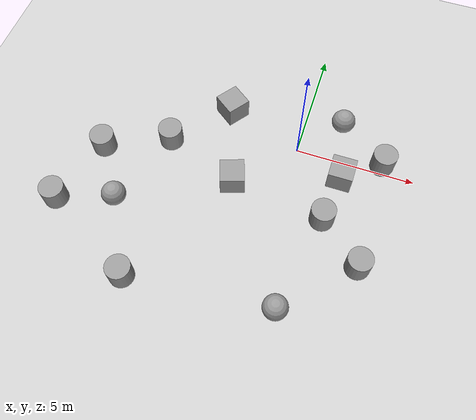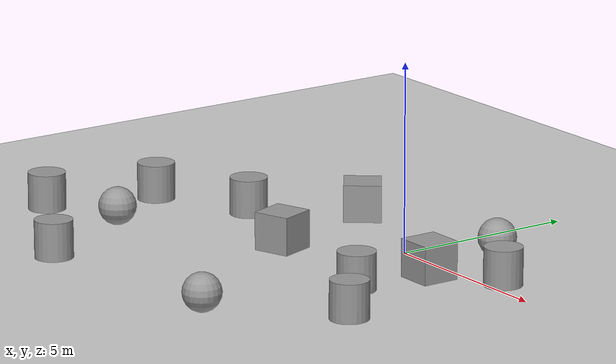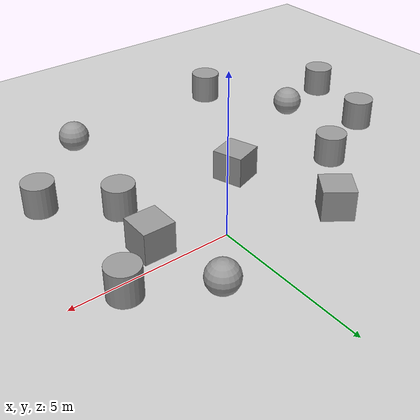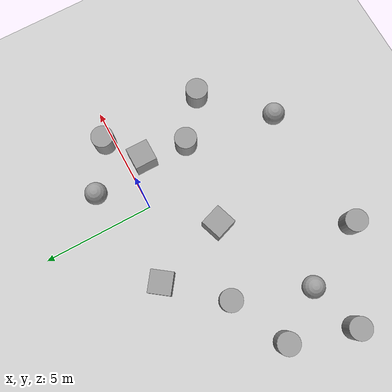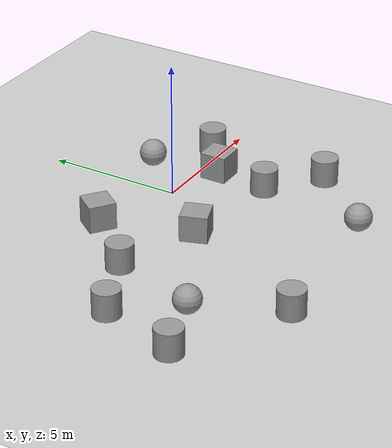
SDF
<sdf version="1.7">
 <world name="default">
  <model name="ground_plane">
   <static>1</static>
   <link name="link">
    <collision name="collision">
     <geometry><plane><normal>0 0 1</normal><size>100 100</size></plane></geometry>
     <surface>
      <contact><collide_bitmask>65535</collide_bitmask></contact>
      <friction><ode><mu>100</mu><mu2>50</mu2></ode></friction>
     </surface>
    </collision>
    <visual name="visual">
     <cast_shadows>0</cast_shadows>
     <geometry><plane><normal>0 0 1</normal><size>100 100</size></plane></geometry>
     <material>
      <script><uri>file://media/materials/scripts/gazebo.material</uri><name>Gazebo/Grey</name></script>
     </material>
    </visual>
   </link>
  </model>
  <light name="sun" type="directional">
   <pose>0 0 10 0 -0 0</pose>
   <diffuse>0.8 0.8 0.8 1</diffuse>
   <specular>0.2 0.2 0.2 1</specular>
   <attenuation>
    <range>1000</range>
    <constant>0.9</constant>
    <linear>0.01</linear>
    <quadratic>0.001</quadratic>
   </attenuation>
   <direction>-0.5 0.1 -0.9</direction>
   <spot><inner_angle>0</inner_angle><outer_angle>0</outer_angle><falloff>0</falloff></spot>
  </light>
  <gravity>0 0 -9.8</gravity>
  <magnetic_field>6e-06 2.3e-05 -4.2e-05</magnetic_field>
  <atmosphere type="adiabatic"/>
  <physics type="ode">
   <max_step_size>0.001</max_step_size>
   <real_time_factor>1</real_time_factor>
   <real_time_update_rate>1000</real_time_update_rate>
  </physics>
  <scene><ambient>0.4 0.4 0.4 1</ambient><background>0.7 0.7 0.7 1</background><shadows>1</shadows></scene>
  <spherical_coordinates>
   <surface_model>EARTH_WGS84</surface_model>
   <latitude_deg>0</latitude_deg>
   <longitude_deg>0</longitude_deg>
   <elevation>0</elevation>
   <heading_deg>0</heading_deg>
  </spherical_coordinates>
  <model name="unit_cylinder">
   <pose>3.58639 0.388225 0.499997 4e-06 3e-06 -0</pose>
   <link name="link">
    <inertial>
     <mass>1</mass>
     <inertia><ixx>0.145833</ixx><ixy>0</ixy><ixz>0</ixz><iyy>0.145833</iyy><iyz>0</iyz><izz>0.125</izz></inertia>
    </inertial>
    <collision name="collision">
     <geometry><cylinder><radius>0.5</radius><length>1</length></cylinder></geometry>
    </collision>
    <visual name="visual">
     <geometry><cylinder><radius>0.5</radius><length>1</length></cylinder></geometry>
     <material>
      <script><name>Gazebo/Grey</name><uri>file://media/materials/scripts/gazebo.material</uri></script>
     </material>
    </visual>
   </link>
  </model>
  <model name="unit_cylinder_0">
   <pose>1.79233 -2.80161 0.499997 4e-06 3e-06 -0</pose>
   <link name="link">
    <inertial>
     <mass>1</mass>
     <inertia><ixx>0.145833</ixx><ixy>0</ixy><ixz>0</ixz><iyy>0.145833</iyy><iyz>0</iyz><izz>0.125</izz></inertia>
    </inertial>
    <collision name="collision">
     <geometry><cylinder><radius>0.5</radius><length>1</length></cylinder></geometry>
    </collision>
    <visual name="visual">
     <geometry><cylinder><radius>0.5</radius><length>1</length></cylinder></geometry>
     <material>
      <script><name>Gazebo/Grey</name><uri>file://media/materials/scripts/gazebo.material</uri></script>
     </material>
    </visual>
   </link>
  </model>
  <model name="unit_sphere">
   <pose>1.55841 1.7766 0.5 0 -0 0</pose>
   <link name="link">
    <inertial>
     <mass>1</mass>
     <inertia><ixx>0.1</ixx><ixy>0</ixy><ixz>0</ixz><iyy>0.1</iyy><iyz>0</iyz><izz>0.1</izz></inertia>
    </inertial>
    <collision name="collision"><geometry><sphere><radius>0.5</radius></sphere></geometry></collision>
    <visual name="visual">
     <geometry><sphere><radius>0.5</radius></sphere></geometry>
     <material>
      <script><name>Gazebo/Grey</name><uri>file://media/materials/scripts/gazebo.material</uri></script>
     </material>
    </visual>
   </link>
  </model>
  <model name="unit_box">
   <pose>2.05937 -0.758404 0.499995 -1e-05 -0 -0</pose>
   <link name="link">
    <inertial>
     <mass>1</mass>
     <inertia>
      <ixx>0.166667</ixx>
      <ixy>0</ixy>
      <ixz>0</ixz>
      <iyy>0.166667</iyy>
      <iyz>0</iyz>
      <izz>0.166667</izz>
     </inertia>
    </inertial>
    <collision name="collision"><geometry><box><size>1 1 1</size></box></geometry></collision>
    <visual name="visual">
     <geometry><box><size>1 1 1</size></box></geometry>
     <material>
      <script><name>Gazebo/Grey</name><uri>file://media/materials/scripts/gazebo.material</uri></script>
     </material>
    </visual>
   </link>
  </model>
  <model name="unit_box_0">
   <pose>-3.23122 1.05114 0.5 -0 -0 -0.634264</pose>
   <link name="link">
    <inertial>
     <mass>1</mass>
     <inertia>
      <ixx>0.166667</ixx>
      <ixy>0</ixy>
      <ixz>0</ixz>
      <iyy>0.166667</iyy>
      <iyz>0</iyz>
      <izz>0.166667</izz>
     </inertia>
    </inertial>
    <collision name="collision"><geometry><box><size>1 1 1</size></box></geometry></collision>
    <visual name="visual">
     <geometry><box><size>1 1 1</size></box></geometry>
     <material>
      <script><name>Gazebo/Grey</name><uri>file://media/materials/scripts/gazebo.material</uri></script>
     </material>
    </visual>
   </link>
  </model>
  <model name="unit_box_1">
   <pose>-2.14563 -2.27628 0.499999 3e-06 -5e-06 1.89882</pose>
   <link name="link">
    <inertial>
     <mass>1</mass>
     <inertia>
      <ixx>0.166667</ixx>
      <ixy>0</ixy>
      <ixz>0</ixz>
      <iyy>0.166667</iyy>
      <iyz>0</iyz>
      <izz>0.166667</izz>
     </inertia>
    </inertial>
    <collision name="collision"><geometry><box><size>1 1 1</size></box></geometry></collision>
    <visual name="visual">
     <geometry><box><size>1 1 1</size></box></geometry>
     <material>
      <script><name>Gazebo/Grey</name><uri>file://media/materials/scripts/gazebo.material</uri></script>
     </material>
    </visual>
   </link>
  </model>
  <model name="unit_sphere_0">
   <pose>-6.42769 -4.49776 0.5 0 -0 0</pose>
   <link name="link">
    <inertial>
     <mass>1</mass>
     <inertia><ixx>0.1</ixx><ixy>0</ixy><ixz>0</ixz><iyy>0.1</iyy><iyz>0</iyz><izz>0.1</izz></inertia>
    </inertial>
    <collision name="collision"><geometry><sphere><radius>0.5</radius></sphere></geometry></collision>
    <visual name="visual">
     <geometry><sphere><radius>0.5</radius></sphere></geometry>
     <material>
      <script><name>Gazebo/Grey</name><uri>file://media/materials/scripts/gazebo.material</uri></script>
     </material>
    </visual>
   </link>
  </model>
  <model name="unit_sphere_1">
   <pose>1.07161 -6.92058 0.5 0 -0 0</pose>
   <link name="link">
    <inertial>
     <mass>1</mass>
     <inertia><ixx>0.1</ixx><ixy>0</ixy><ixz>0</ixz><iyy>0.1</iyy><iyz>0</iyz><izz>0.1</izz></inertia>
    </inertial>
    <collision name="collision"><geometry><sphere><radius>0.5</radius></sphere></geometry></collision>
    <visual name="visual">
     <geometry><sphere><radius>0.5</radius></sphere></geometry>
     <material>
      <script><name>Gazebo/Grey</name><uri>file://media/materials/scripts/gazebo.material</uri></script>
     </material>
    </visual>
   </link>
  </model>
  <model name="unit_cylinder_1">
   <pose>3.59307 -4.32848 0.499992 -3e-06 -4e-06 -0</pose>
   <link name="link">
    <inertial>
     <mass>1</mass>
     <inertia><ixx>0.145833</ixx><ixy>0</ixy><ixz>0</ixz><iyy>0.145833</iyy><iyz>0</iyz><izz>0.125</izz></inertia>
    </inertial>
    <collision name="collision">
     <geometry><cylinder><radius>0.5</radius><length>1</length></cylinder></geometry>
    </collision>
    <visual name="visual">
     <geometry><cylinder><radius>0.5</radius><length>1</length></cylinder></geometry>
     <material>
      <script><name>Gazebo/Grey</name><uri>file://media/materials/scripts/gazebo.material</uri></script>
     </material>
    </visual>
   </link>
  </model>
  <model name="unit_cylinder_2">
   <pose>-5.26081 -1.15931 0.499998 3e-06 4e-06 -0</pose>
   <link name="link">
    <inertial>
     <mass>1</mass>
     <inertia><ixx>0.145833</ixx><ixy>0</ixy><ixz>0</ixz><iyy>0.145833</iyy><iyz>0</iyz><izz>0.125</izz></inertia>
    </inertial>
    <collision name="collision">
     <geometry><cylinder><radius>0.5</radius><length>1</length></cylinder></geometry>
    </collision>
    <visual name="visual">
     <geometry><cylinder><radius>0.5</radius><length>1</length></cylinder></geometry>
     <material>
      <script><name>Gazebo/Grey</name><uri>file://media/materials/scripts/gazebo.material</uri></script>
     </material>
    </visual>
   </link>
  </model>
  <model name="unit_cylinder_3">
   <pose>-7.85757 -2.34815 0.499994 -4e-06 -3e-06 -0</pose>
   <link name="link">
    <inertial>
     <mass>1</mass>
     <inertia><ixx>0.145833</ixx><ixy>0</ixy><ixz>0</ixz><iyy>0.145833</iyy><iyz>0</iyz><izz>0.125</izz></inertia>
    </inertial>
    <collision name="collision">
     <geometry><cylinder><radius>0.5</radius><length>1</length></cylinder></geometry>
    </collision>
    <visual name="visual">
     <geometry><cylinder><radius>0.5</radius><length>1</length></cylinder></geometry>
     <material>
      <script><name>Gazebo/Grey</name><uri>file://media/materials/scripts/gazebo.material</uri></script>
     </material>
    </visual>
   </link>
  </model>
  <model name="unit_cylinder_4">
   <pose>-8.72963 -5.21398 0.499996 4e-06 3e-06 -0</pose>
   <link name="link">
    <inertial>
     <mass>1</mass>
     <inertia><ixx>0.145833</ixx><ixy>0</ixy><ixz>0</ixz><iyy>0.145833</iyy><iyz>0</iyz><izz>0.125</izz></inertia>
    </inertial>
    <collision name="collision">
     <geometry><cylinder><radius>0.5</radius><length>1</length></cylinder></geometry>
    </collision>
    <visual name="visual">
     <geometry><cylinder><radius>0.5</radius><length>1</length></cylinder></geometry>
     <material>
      <script><name>Gazebo/Grey</name><uri>file://media/materials/scripts/gazebo.material</uri></script>
     </material>
    </visual>
   </link>
  </model>
  <model name="unit_cylinder_5">
   <pose>-4.86242 -7.43421 0.50707 -0.001539 -0.01416 -0.106828</pose>
   <link name="link">
    <inertial>
     <mass>1</mass>
     <inertia><ixx>0.145833</ixx><ixy>0</ixy><ixz>0</ixz><iyy>0.145833</iyy><iyz>0</iyz><izz>0.125</izz></inertia>
    </inertial>
    <collision name="collision">
     <geometry><cylinder><radius>0.5</radius><length>1</length></cylinder></geometry>
    </collision>
    <visual name="visual">
     <geometry><cylinder><radius>0.5</radius><length>1</length></cylinder></geometry>
     <material>
      <script><name>Gazebo/Grey</name><uri>file://media/materials/scripts/gazebo.material</uri></script>
     </material>
    </visual>
   </link>
  </model>
 </world>
</sdf>
